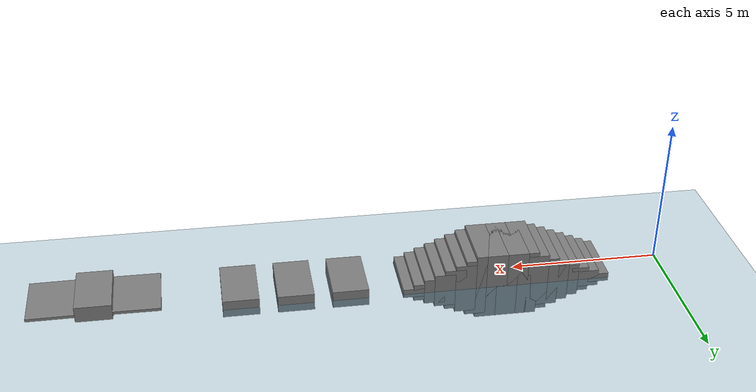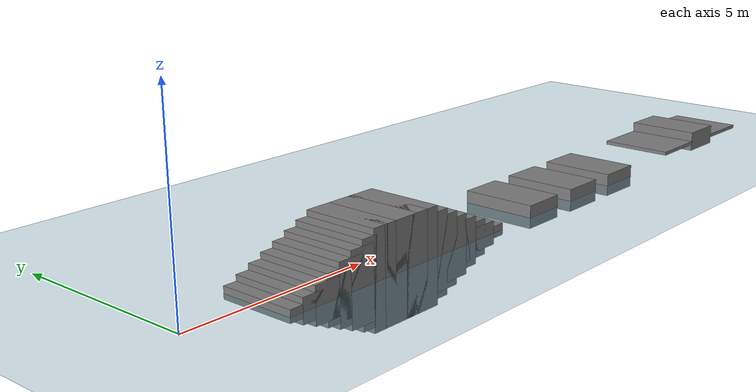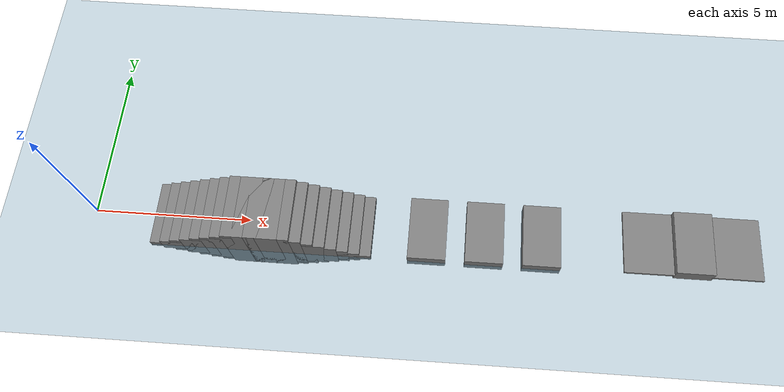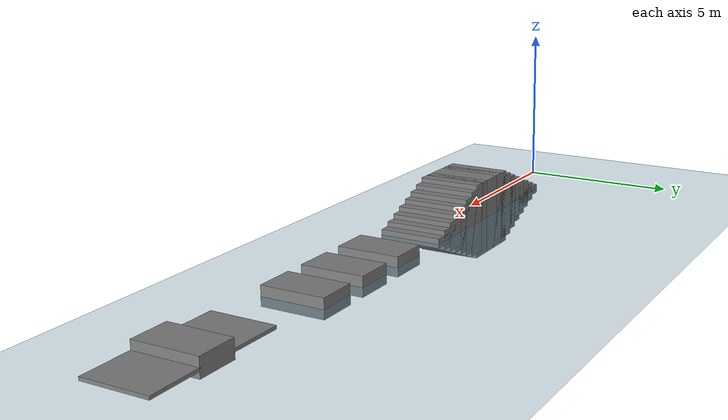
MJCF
<mujoco model="bx scene">

  <statistic center="0 0 0.6" extent="1.3"/>

  <visual>
    <headlight diffuse="0.5 0.5 0.5" ambient="0.2 0.2 0.2" specular="0.9 0.9 0.9"/>
    <rgba haze="0.15 0.25 0.35 1"/>
    <global azimuth="200" elevation="-20"/>
  </visual>

  <asset>
    <texture type="skybox" builtin="flat" rgb1="0.3 0.5 0.7" rgb2="0 0 0" width="512" height="3072"/>
    <texture type="2d" name="groundplane" builtin="checker" mark="edge" rgb1="0.3 0.52 0.63" rgb2="0.3 0.52 0.63" markrgb="1 1 1" width="300" height="300"/>
    <material name="groundplane" texture="groundplane" texuniform="true" texrepeat="5 5" reflectance="0.2"/>

    <texture name="texplane" type="2d" builtin="checker" rgb1=".2 .3 .4" rgb2=".1 0.15 0.2"
        width="512" height="512" mark="cross" markrgb=".8 .8 .8"/>
    <texture name="texplane2" type="2d" builtin="checker" rgb1="1 0.3137 0.1843" rgb2="0.0 0.30196 0.38039"
        width="512" height="512" mark="cross" markrgb=".8 .8 .8"/>
    <material name="matplane" reflectance="0." texture="texplane" texrepeat="1 1" texuniform="true"/>
    <material name="matplane2" reflectance="0.1" texture="texplane2" texrepeat="1 1" texuniform="true"/>
    <hfield name='hf0' nrow='200' ncol='200' size="10 5 0.2 .1"/>
  </asset>

  <worldbody>
    <light pos="1 0 3.5" dir="0 0 -1" directional="true"/>
    <geom name="floor" size="0 0 0.05" type="plane" material="groundplane" group="0"/>

    <!-- ===================== 上楼梯（数量翻倍）===================== -->

    <!-- ===================== 下楼梯（数量翻倍）===================== -->

    <!-- ===================== 上楼梯（数量翻倍）===================== -->

<geom pos="2.30 0.00 0.0" type="box" size="0.35 1.0 0.15" quat="1 0 0 0"/>
<geom pos="2.65 0.00 0.0" type="box" size="0.35 1.0 0.30" quat="1 0 0 0"/>
<geom pos="3.00 0.00 0.0" type="box" size="0.35 1.0 0.45" quat="1 0 0 0"/>
<geom pos="3.35 0.00 0.0" type="box" size="0.35 1.0 0.60" quat="1 0 0 0"/>
<geom pos="3.70 0.00 0.0" type="box" size="0.35 1.0 0.75" quat="1 0 0 0"/>
<geom pos="4.05 0.00 0.0" type="box" size="0.35 1.0 0.90" quat="1 0 0 0"/>
<geom pos="4.40 0.00 0.0" type="box" size="0.35 1.0 1.05" quat="1 0 0 0"/>
<geom pos="4.75 0.00 0.0" type="box" size="0.35 1.0 1.20" quat="1 0 0 0"/>
<geom pos="5.10 0.00 0.0" type="box" size="0.35 1.0 1.20" quat="1 0 0 0"/>
<geom pos="5.45 0.00 0.0" type="box" size="0.35 1.0 1.20" quat="1 0 0 0"/>
<geom pos="5.80 0.00 0.0" type="box" size="0.35 1.0 1.20" quat="1 0 0 0"/>
<geom pos="6.15 0.00 0.0" type="box" size="0.35 1.0 1.20" quat="1 0 0 0"/>
<geom pos="6.50 0.00 0.0" type="box" size="0.35 1.0 1.05" quat="1 0 0 0"/>
<geom pos="6.85 0.00 0.0" type="box" size="0.35 1.0 0.90" quat="1 0 0 0"/>
<geom pos="7.20 0.00 0.0" type="box" size="0.35 1.0 0.75" quat="1 0 0 0"/>
<geom pos="7.55 0.00 0.0" type="box" size="0.35 1.0 0.60" quat="1 0 0 0"/>
<geom pos="7.90 0.00 0.0" type="box" size="0.35 1.0 0.45" quat="1 0 0 0"/>
<geom pos="8.25 0.00 0.0" type="box" size="0.35 1.0 0.30" quat="1 0 0 0"/>
<geom pos="8.60 0.00 0.0" type="box" size="0.35 1.0 0.15" quat="1 0 0 0"/>

<geom pos="10.7 0 0" type="box" size="0.6 1.0 0.3" quat="1.0 0.0 0.0 0.0" />
<geom pos="12.5 0 0" type="box" size="0.6 1.0 0.3" quat="1.0 0.0 0.0 0.0" />
<geom pos="14.3 0 0" type="box" size="0.6 1.0 0.3" quat="1.0 0.0 0.0 0.0" />
<!-- Gap -> 20-degree up ramp from ground -> flat -> 20-degree down ramp -->
<geom pos="17.6518 0 0.2266" type="box" size="0.8 1.0 0.05" euler="0 -0.349066 0"  />
<geom pos="19.0035 0 0.2736" type="box" size="0.6 1.0 0.2736" quat="1 0 0 0"  />
<geom pos="20.3553 0 0.2266" type="box" size="0.8 1.0 0.05" euler="0 0.349066 0"  />

<!-- ================== Walls on both sides of the stairs ================== -->
<!-- Left wall (y=0.6), distance from center: 0.6m -->
<!-- Right wall (y=-0.6), distance from center: 0.6m -->

<body name="fov_c0" mocap="true"><geom type="sphere" size="0.02" rgba="1 0 0 1"/></body>
<body name="fov_c1" mocap="true"><geom type="sphere" size="0.02" rgba="1 0 0 1"/></body>
<body name="fov_c2" mocap="true"><geom type="sphere" size="0.02" rgba="1 0 0 1"/></body>
<body name="fov_c3" mocap="true"><geom type="sphere" size="0.02" rgba="1 0 0 1"/></body>

  </worldbody>
</mujoco>
